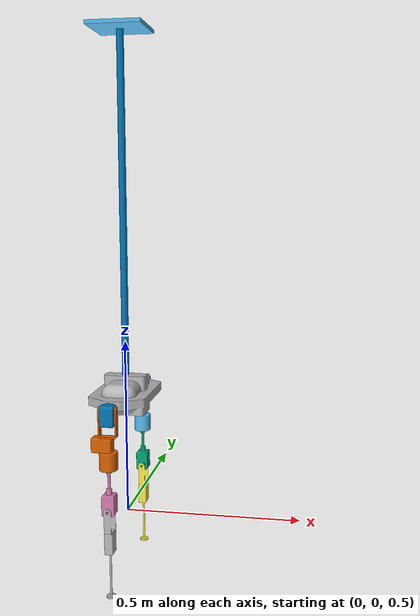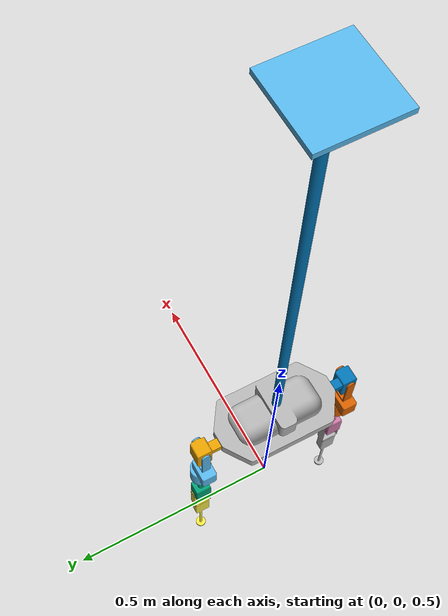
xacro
<?xml version="1.0"?>

<!-- Robot Name -->
<robot name="LiCAS_A1" xmlns:xacro="http://ros.org/wiki/xacro">

<!-- Import Transmissions -->
<xacro:include filename="$(find cable_suspended_robotics)/urdf/licas/licasa1_testbench.transmission.xacro" />
<xacro:LiCAS_A1_transmission name="LiCAS_A1" hardware_interface1="hardware_interface/PositionJointInterface" hardware_interface2="hardware_interface/EffortJointInterface" />

<!-- Import Gazebo plugins -->
<xacro:include filename="$(find cable_suspended_robotics)/gazebo/licas/gazebo.urdf.xacro"/>

<link name="world"/>

<!-- TESTBENCH -->
<joint name="base_joint" type="fixed">
  <origin xyz="0 0 1.85"/>
  <parent link="world"/>
  <child link="testbench"/>
</joint>

<link name="testbench">
  <inertial>
    <origin rpy="0 0 0" xyz="0 0 0"/>
    <mass value="10" />
    <inertia ixx="1e-03" ixy="0.0" ixz="0.0" iyy="1e-03" iyz="0.0" izz="1e-03"/>
  </inertial>
  <visual>
    <origin rpy="0 0 0" xyz="0 0 0"/>
    <geometry>
      <box size="0.15 0.15 0.01"/>
    </geometry>
  </visual>
</link>

<!-- CABLES -->
<joint name="revolute_joint_z" type="revolute" >
  <parent link="testbench" />
  <child link="bar_link_z" />
  <axis xyz="0 0 1" />
  <dynamics damping="0.517" friction="0.0"/>
  <limit effort="10" lower="${-360/180*pi}" upper="${360/180*pi}" velocity="6"/>
</joint>

<link name="bar_link_z">
  <inertial>
    <origin rpy="0 0 0" xyz="0 0 -0.4"/>
    <mass value="1"/>
    <inertia ixx="0.313" ixy="0.0" ixz="0.0" iyy="0.363" iyz="0.0" izz="0.745"/>
  </inertial>
</link>

<joint name="revolute_joint_x" type="revolute" >
  <parent link="bar_link_z" />
  <child link="bar_link_x" />
  <axis xyz="1 0 0" />
  <dynamics damping="1.33" friction="0.0"/>
  <limit effort="10.0" lower="${-150/180*pi}" upper="${150/180*pi}" velocity="6"/>
</joint>

<link name="bar_link_x">
  <inertial>
    <origin rpy="0 0 0" xyz="0 0 -0.174"/>
    <mass value="4.237"/>
    <inertia ixx="0.313" ixy="0.0" ixz="0.0" iyy="0.363" iyz="0.0" izz="0.745"/>
  </inertial>
</link>

<joint name="revolute_joint_y" type="revolute" >
  <parent link="bar_link_x" />
  <child link="bar_link_y" />
  <axis xyz="0 1 0" />
  <dynamics damping="1.311" friction="0.0"/>
  <limit effort="10.0" lower="${-150/180*pi}" upper="${150/180*pi}" velocity="6"/>
</joint>

<link name="bar_link_y">
  <inertial>
    <origin rpy="0 0 0" xyz="0 0 -0.824"/>
    <mass value="5.032"/>
    <inertia ixx="0.313" ixy="0.0" ixz="0.0" iyy="0.363" iyz="0.0" izz="0.745"/>
  </inertial>
  <visual>
    <origin rpy="0 0 0" xyz="0 0 -0.5"/>
    <geometry>
      <cylinder length="1.0" radius="0.01"/>
    </geometry>
  </visual>
</link>

<!-- SHOULDER -->
<joint name="shoulder_joint_z" type="revolute" >
  <origin xyz="0 0 -1.0"/>
  <parent link="bar_link_y"/>
  <child link="shoulder_link_z"/>
  <axis xyz="0 0 1"/>
  <dynamics damping="0.0" friction="0.0"/>
  <limit effort="6.0" lower="${-150/180*pi}" upper="${150/180*pi}" velocity="6"/>
</joint>

<link name="shoulder_link_z">
  <inertial>
    <origin rpy="0 0 0" xyz="0 0 0"/>
    <mass value="0.639"/>
    <inertia ixx="3.02e-3" ixy="0" ixz="0" iyy="8.64e-4" iyz="0" izz="3.39e-3"/>
  </inertial>
</link>

<joint name="shoulder_joint_x" type="revolute" >
  <origin xyz="0 0 0"/>
  <parent link="shoulder_link_z"/>
  <child link="shoulder_link_x"/>
  <axis xyz="1 0 0"/>
  <dynamics damping="0.0" friction="0.0"/>
  <limit effort="6.0" lower="${-150/180*pi}" upper="${150/180*pi}" velocity="6"/>
</joint>

<link name="shoulder_link_x">
  <inertial>
    <origin rpy="0 0 0" xyz="0 0 0"/>
    <mass value="0.639"/>
    <inertia ixx="3.02e-3" ixy="0" ixz="0" iyy="8.64e-4" iyz="0" izz="3.39e-3"/>
  </inertial>
</link>

<joint name="shoulder_joint_y" type="revolute" >
  <origin xyz="0 0 0"/>
  <parent link="shoulder_link_x"/>
  <child link="shoulder_link_y"/>
  <axis xyz="0 1 0"/>
  <dynamics damping="0.0" friction="0.0"/>
  <limit effort="6.0" lower="${-150/180*pi}" upper="${150/180*pi}" velocity="6"/>
</joint>

<link name="shoulder_link_y">
  <inertial>
    <origin rpy="0 0 0" xyz="0 0 0"/>
    <mass value="0.639"/>
    <inertia ixx="3.02e-3" ixy="0" ixz="0" iyy="8.64e-4" iyz="0" izz="3.39e-3"/>
  </inertial>
  <visual>
    <origin xyz="0 0 0"/>
    <geometry>
      <mesh filename="package://cable_suspended_robotics/mesh/licas/Shoulder_Pitch_Structure.dae" scale=".001 .001 .001"/>
    </geometry>
  </visual>
  <collision>
    <origin xyz="0 0 0"/>
    <geometry>
      <mesh filename="package://cable_suspended_robotics/mesh/licas/Shoulder_Pitch_Structure.dae" scale=".001 .001 .001"/>
    </geometry>
  </collision>
</link>

<!-- LEFT ARM-->
<joint name="LiCAS_A1_q1_1" type="revolute">
  <origin xyz="0 0.14 0.00"/>
  <parent link="shoulder_link_y"/>
  <child link="left_shoulder_roll"/>
  <axis xyz="0 1 0"/>
  <dynamics damping="0.0" friction="0.0"/>
  <limit effort="10.0" lower="${-90/180*pi}" upper="${90/180*pi}" velocity="6"/>
</joint>

<link name="left_shoulder_roll">
  <inertial>
    <origin xyz="0 0.0236 -0.00946"/>
    <mass value="0.233"/>
    <inertia ixx="3.68e-4" ixy="-7.57e-6" ixz="5.38e-6" iyy="1.16e-4" iyz="-4.8e-5" izz="3.76e-4"/>
  </inertial>
  <visual>
    <origin xyz="0 0.04 0"/>
    <geometry>
      <mesh filename="package://cable_suspended_robotics/mesh/licas/Shoulder_Roll_Structure_Left.dae" scale=".001 .001 .001"/>
    </geometry>
  </visual>
  <collision>
    <origin xyz="0 0.04 0"/>
    <geometry>
      <mesh filename="package://cable_suspended_robotics/mesh/licas/Shoulder_Roll_Structure_Left.dae" scale=".001 .001 .001"/>
    </geometry>
  </collision>
</link>

<joint name="LiCAS_A1_q1_2" type="revolute">
  <origin xyz="0 0.04 0"/>
  <parent link="left_shoulder_roll"/>
  <child link="left_shoulder_yaw"/>
  <axis xyz="1 0 0"/>
  <dynamics damping="0.0" friction="0.0"/>
  <limit effort="10.0" lower="${-20/180*pi}" upper="${90/180*pi}" velocity="6"/>
</joint>

<link name="left_shoulder_yaw">
  <inertial>
    <origin xyz="-0.015 0 -0.1"/>
    <mass value="0.246"/>
    <inertia ixx="3.49e-4" ixy="0" ixz="-3.79e-5" iyy="4.46e-4" iyz="0" izz="1.49e-4"/>
  </inertial>
  <visual>
    <origin xyz="0 0 0"/>
    <geometry>
      <mesh filename="package://cable_suspended_robotics/mesh/licas/Assembly_Shoulder_Yaw_Structure.dae" scale=".001 .001 .001"/>
    </geometry>
  </visual>
  <collision>
    <origin xyz="0 0 0"/>
    <geometry>
      <mesh filename="package://cable_suspended_robotics/mesh/licas/Assembly_Shoulder_Yaw_Structure.dae" scale=".001 .001 .001"/>
    </geometry>
  </collision>
</link>

<joint name="LiCAS_A1_q1_3" type="revolute">
  <origin xyz="0 0 -0.143"/>
  <parent link="left_shoulder_yaw"/>
  <child link="left_elbow_pitch"/>
  <axis xyz="0 0 1"/>
  <dynamics damping="0.0" friction="0.0"/>
  <limit effort="10.0" lower="${-90/180*pi}" upper="${90/180*pi}" velocity="6"/>
</joint>

<link name="left_elbow_pitch">
  <inertial>
    <origin xyz="0 0 -0.093"/>
    <mass value="0.214"/>
    <inertia ixx="4.21e-4" ixy="-7.81e-7" ixz="-4.06e-5" iyy="4.26e-4" iyz="1.8e-5" izz="5.01e-5"/>
  </inertial>
  <visual>
    <origin xyz="0 0 -0.132"/>
    <geometry>
      <mesh filename="package://cable_suspended_robotics/mesh/licas/Elbow_Pitch_Structure_Left_Cut.dae" scale=".001 .001 .001"/>
    </geometry>
  </visual>
  <collision>
    <origin xyz="0 0 -0.132"/>
    <geometry>
      <mesh filename="package://cable_suspended_robotics/mesh/licas/Elbow_Pitch_Structure_Left_Cut.dae" scale=".001 .001 .001"/>
    </geometry>
  </collision>
</link>

<joint name="LiCAS_A1_q1_4" type="revolute">
  <origin xyz="0 0 -0.132"/>
  <parent link="left_elbow_pitch"/>
  <child link="left_forearm_link"/>
  <axis xyz="0 1 0"/>
  <dynamics damping="0.0" friction="0.0"/>
  <limit effort="10.0" lower="${-150/180*pi}" upper="${150/180*pi}" velocity="6"/>
</joint>

<link name="left_forearm_link">
  <inertial>
    <origin xyz="0 0 -0.092"/>
    <mass value="0.106"/>
    <inertia ixx="3.94e-4" ixy="0" ixz="0" iyy="3.75e-4" iyz="-3.5e-6" izz="3.05e-5"/>
  </inertial>
  <visual>
    <origin xyz="0 0 0"/>
    <geometry>
      <mesh filename="package://cable_suspended_robotics/mesh/licas/Forearm_Link_with_Gripper_Servo.dae" scale=".001 .001 .001"/>
    </geometry>
  </visual>
  <collision>
    <origin xyz="0 0 0"/>
    <geometry>
      <mesh filename="package://cable_suspended_robotics/mesh/licas/Forearm_Link_with_Gripper_Servo.dae" scale=".001 .001 .001"/>
    </geometry>
  </collision>
</link>

<!-- RIGHT ARM-->
<joint name="LiCAS_A1_q2_1" type="revolute">
  <origin xyz="0 -0.14 0.0"/>
  <parent link="shoulder_link_y"/>
  <child link="right_shoulder_roll"/>
  <axis xyz="0 1 0"/>
  <dynamics damping="0.0" friction="0.0"/>
  <limit effort="10.0" lower="${-90/180*pi}" upper="${90/180*pi}" velocity="6"/>
</joint>

<link name="right_shoulder_roll">
  <inertial>
    <origin xyz="0 -0.0236 -0.00946"/>
    <mass value="0.233"/>
    <inertia ixx="3.68e-4" ixy="7.57e-6" ixz="5.38e-6" iyy="1.16e-4" iyz="4.8e-5" izz="3.76e-4"/>
  </inertial>
  <visual>
    <origin xyz="0 -0.04 0"/>
    <geometry>
      <mesh filename="package://cable_suspended_robotics/mesh/licas/Shoulder_Roll_Structure_Right.dae" scale=".001 .001 .001"/>
    </geometry>
  </visual>
  <collision>
    <origin xyz="0 -0.04 0"/>
    <geometry>
      <mesh filename="package://cable_suspended_robotics/mesh/licas/Shoulder_Roll_Structure_Right.dae" scale=".001 .001 .001"/>
    </geometry>
  </collision>
</link>

<joint name="LiCAS_A1_q2_2" type="revolute">
  <origin xyz="0 -0.04 0"/>
  <parent link="right_shoulder_roll"/>
  <child link="right_shoulder_yaw"/>
  <axis xyz="1 0 0"/>
  <dynamics damping="0.0" friction="0.0"/>
  <limit effort="10.0" lower="${-90/180*pi}" upper="${20/180*pi}" velocity="6"/>
</joint>

<link name="right_shoulder_yaw">
  <inertial>
    <origin xyz="-0.015 0 -0.1"/>
    <mass value="0.246"/>
    <inertia ixx="3.49e-4" ixy="0" ixz="-3.79e-5" iyy="4.46e-4" iyz="0" izz="1.49e-4"/>
  </inertial>
  <visual>
    <origin xyz="0 0 0"/>
    <geometry>
      <mesh filename="package://cable_suspended_robotics/mesh/licas/Assembly_Shoulder_Yaw_Structure.dae" scale=".001 .001 .001"/>
    </geometry>
  </visual>
  <collision>
    <origin xyz="0 0 0"/>
    <geometry>
      <mesh filename="package://cable_suspended_robotics/mesh/licas/Assembly_Shoulder_Yaw_Structure.dae" scale=".001 .001 .001"/>
    </geometry>
  </collision>
</link>

<joint name="LiCAS_A1_q2_3" type="revolute">
  <origin xyz="0 0 -0.143"/>
  <parent link="right_shoulder_yaw"/>
  <child link="right_elbow_pitch"/>
  <axis xyz="0 0 1"/>
  <dynamics damping="0.0" friction="0.0"/>
  <limit effort="10.0" lower="${-90/180*pi}" upper="${90/180*pi}" velocity="6"/>
</joint>

<link name="right_elbow_pitch">
  <inertial>
    <origin xyz="0 0 -0.13"/>
    <mass value="0.214"/>
    <inertia ixx="4.21e-4" ixy="7.81e-7" ixz="-4.06e-5" iyy="4.26e-4" iyz="-1.8e-5" izz="5.01e-5"/>
  </inertial>
  <visual>
    <origin xyz="0 0 -0.132"/>
    <geometry>
      <mesh filename="package://cable_suspended_robotics/mesh/licas/Elbow_Pitch_Structure_Right_Cut.dae" scale=".001 .001 .001"/>
    </geometry>
  </visual>
  <collision>
    <origin xyz="0 0 -0.132"/>
    <geometry>
      <mesh filename="package://cable_suspended_robotics/mesh/licas/Elbow_Pitch_Structure_Right_Cut.dae" scale=".001 .001 .001"/>
    </geometry>
  </collision>
</link>

<joint name="LiCAS_A1_q2_4" type="revolute">
  <origin xyz="0 0 -0.132"/>
  <parent link="right_elbow_pitch"/>
  <child link="right_forearm_link"/>
  <axis xyz="0 1 0"/>
  <dynamics damping="0.0" friction="0.0"/>
  <limit effort="10.0" lower="${-150/180*pi}" upper="${150/180*pi}" velocity="6"/>
</joint>

<link name="right_forearm_link">
  <inertial>
    <origin xyz="0 0 -0.092"/>
    <mass value="0.106"/>
    <inertia ixx="3.94e-4" ixy="0" ixz="0" iyy="3.75e-4" iyz="3.5e-6" izz="3.05e-5"/>
  </inertial>
  <visual>
    <origin xyz="0 0 0"/>
    <geometry>
      <mesh filename="package://cable_suspended_robotics/mesh/licas/Forearm_Link_with_Gripper_Servo.dae" scale=".001 .001 .001"/>
    </geometry>
  </visual>
  <collision>
    <origin xyz="0 0 0"/>
    <geometry>
      <mesh filename="package://cable_suspended_robotics/mesh/licas/Forearm_Link_with_Gripper_Servo.dae" scale=".001 .001 .001"/>
    </geometry>
  </collision>
</link>

</robot>
